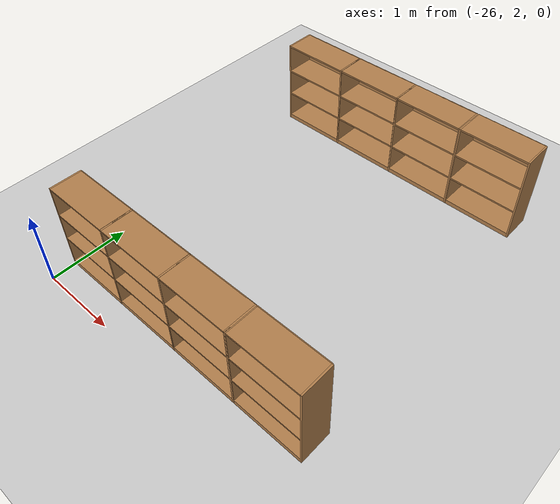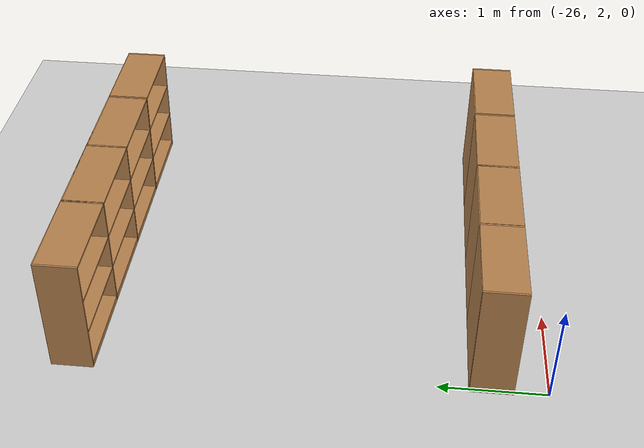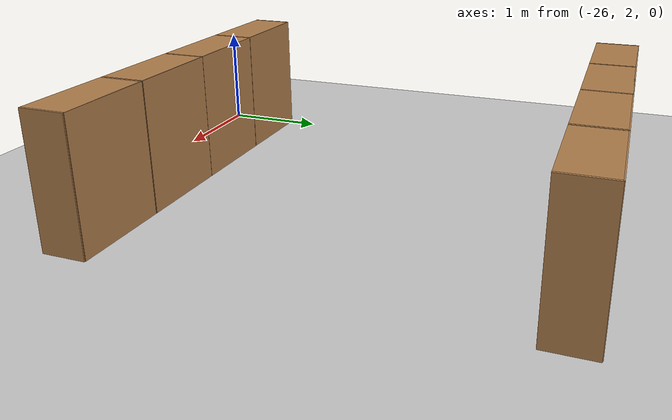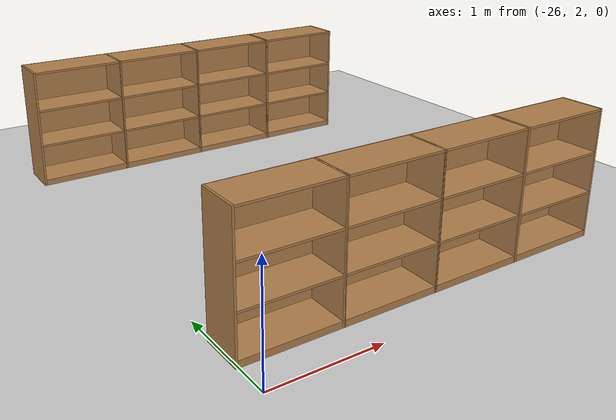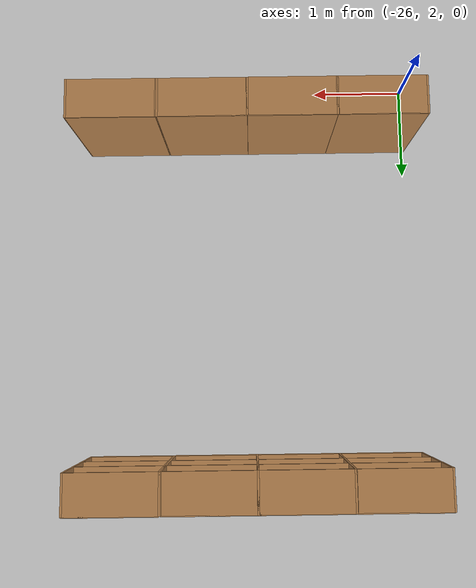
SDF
<sdf version="1.6">
 <world name="default">
  <model name="ground_plane">
   <static>1</static>
   <link name="link">
    <collision name="collision">
     <geometry><plane><normal>0 0 1</normal><size>100 100</size></plane></geometry>
     <surface><friction><ode><mu>100</mu><mu2>50</mu2></ode></friction></surface>
    </collision>
    <visual name="visual">
     <cast_shadows>0</cast_shadows>
     <geometry><plane><normal>0 0 1</normal><size>100 100</size></plane></geometry>
     <material>
      <script><uri>file://media/materials/scripts/gazebo.material</uri><name>Gazebo/Grey</name></script>
     </material>
    </visual>
   </link>
  </model>
  <model name="Bookself-4_clone_0_clone_4">
   <model name="Bookself-3">
    <model name="bookshelf_0">
     <static>1</static>
     <link name="link">
      <inertial><mass>1</mass></inertial>
      <collision name="back">
       <pose>0 0.005 0.6 0 -0 0</pose>
       <geometry><box><size>0.9 0.01 1.2</size></box></geometry>
      </collision>
      <visual name="visual1">
       <pose>0 0.005 0.6 0 -0 0</pose>
       <geometry><box><size>0.9 0.01 1.2</size></box></geometry>
       <material>
        <script><uri>file://media/materials/scripts/gazebo.material</uri><name>Gazebo/Wood</name></script>
       </material>
      </visual>
      <collision name="left_side">
       <pose>0.45 -0.195 0.6 0 -0 0</pose>
       <geometry><box><size>0.02 0.4 1.2</size></box></geometry>
      </collision>
      <visual name="visual2">
       <pose>0.45 -0.195 0.6 0 -0 0</pose>
       <geometry><box><size>0.02 0.4 1.2</size></box></geometry>
       <material>
        <script><uri>file://media/materials/scripts/gazebo.material</uri><name>Gazebo/Wood</name></script>
       </material>
      </visual>
      <collision name="right_side">
       <pose>-0.45 -0.195 0.6 0 -0 0</pose>
       <geometry><box><size>0.02 0.4 1.2</size></box></geometry>
      </collision>
      <visual name="visual3">
       <pose>-0.45 -0.195 0.6 0 -0 0</pose>
       <geometry><box><size>0.02 0.4 1.2</size></box></geometry>
       <material>
        <script><uri>file://media/materials/scripts/gazebo.material</uri><name>Gazebo/Wood</name></script>
       </material>
      </visual>
      <collision name="bottom">
       <pose>0 -0.195 0.03 0 -0 0</pose>
       <geometry><box><size>0.88 0.4 0.06</size></box></geometry>
      </collision>
      <visual name="visual4">
       <pose>0 -0.195 0.03 0 -0 0</pose>
       <geometry><box><size>0.88 0.4 0.06</size></box></geometry>
       <material>
        <script><uri>file://media/materials/scripts/gazebo.material</uri><name>Gazebo/Wood</name></script>
       </material>
      </visual>
      <collision name="top">
       <pose>0 -0.195 1.19 0 -0 0</pose>
       <geometry><box><size>0.88 0.4 0.02</size></box></geometry>
      </collision>
      <visual name="visual5">
       <pose>0 -0.195 1.19 0 -0 0</pose>
       <geometry><box><size>0.88 0.4 0.02</size></box></geometry>
       <material>
        <script><uri>file://media/materials/scripts/gazebo.material</uri><name>Gazebo/Wood</name></script>
       </material>
      </visual>
      <collision name="low_shelf">
       <pose>0 -0.195 0.43 0 -0 0</pose>
       <geometry><box><size>0.88 0.4 0.02</size></box></geometry>
      </collision>
      <visual name="visual6">
       <pose>0 -0.195 0.43 0 -0 0</pose>
       <geometry><box><size>0.88 0.4 0.02</size></box></geometry>
       <material>
        <script><uri>file://media/materials/scripts/gazebo.material</uri><name>Gazebo/Wood</name></script>
       </material>
      </visual>
      <collision name="high_shelf">
       <pose>0 -0.195 0.8 0 -0 0</pose>
       <geometry><box><size>0.88 0.4 0.02</size></box></geometry>
      </collision>
      <visual name="visual7">
       <pose>0 -0.195 0.8 0 -0 0</pose>
       <geometry><box><size>0.88 0.4 0.02</size></box></geometry>
       <material>
        <script><uri>file://media/materials/scripts/gazebo.material</uri><name>Gazebo/Wood</name></script>
       </material>
      </visual>
     </link>
     <pose>-0.903039 0 0 0 -0 0</pose>
    </model>
    <model name="bookshelf_1">
     <static>1</static>
     <link name="link">
      <inertial><mass>1</mass></inertial>
      <collision name="back">
       <pose>0 0.005 0.6 0 -0 0</pose>
       <geometry><box><size>0.9 0.01 1.2</size></box></geometry>
      </collision>
      <visual name="visual1">
       <pose>0 0.005 0.6 0 -0 0</pose>
       <geometry><box><size>0.9 0.01 1.2</size></box></geometry>
       <material>
        <script><uri>file://media/materials/scripts/gazebo.material</uri><name>Gazebo/Wood</name></script>
       </material>
      </visual>
      <collision name="left_side">
       <pose>0.45 -0.195 0.6 0 -0 0</pose>
       <geometry><box><size>0.02 0.4 1.2</size></box></geometry>
      </collision>
      <visual name="visual2">
       <pose>0.45 -0.195 0.6 0 -0 0</pose>
       <geometry><box><size>0.02 0.4 1.2</size></box></geometry>
       <material>
        <script><uri>file://media/materials/scripts/gazebo.material</uri><name>Gazebo/Wood</name></script>
       </material>
      </visual>
      <collision name="right_side">
       <pose>-0.45 -0.195 0.6 0 -0 0</pose>
       <geometry><box><size>0.02 0.4 1.2</size></box></geometry>
      </collision>
      <visual name="visual3">
       <pose>-0.45 -0.195 0.6 0 -0 0</pose>
       <geometry><box><size>0.02 0.4 1.2</size></box></geometry>
       <material>
        <script><uri>file://media/materials/scripts/gazebo.material</uri><name>Gazebo/Wood</name></script>
       </material>
      </visual>
      <collision name="bottom">
       <pose>0 -0.195 0.03 0 -0 0</pose>
       <geometry><box><size>0.88 0.4 0.06</size></box></geometry>
      </collision>
      <visual name="visual4">
       <pose>0 -0.195 0.03 0 -0 0</pose>
       <geometry><box><size>0.88 0.4 0.06</size></box></geometry>
       <material>
        <script><uri>file://media/materials/scripts/gazebo.material</uri><name>Gazebo/Wood</name></script>
       </material>
      </visual>
      <collision name="top">
       <pose>0 -0.195 1.19 0 -0 0</pose>
       <geometry><box><size>0.88 0.4 0.02</size></box></geometry>
      </collision>
      <visual name="visual5">
       <pose>0 -0.195 1.19 0 -0 0</pose>
       <geometry><box><size>0.88 0.4 0.02</size></box></geometry>
       <material>
        <script><uri>file://media/materials/scripts/gazebo.material</uri><name>Gazebo/Wood</name></script>
       </material>
      </visual>
      <collision name="low_shelf">
       <pose>0 -0.195 0.43 0 -0 0</pose>
       <geometry><box><size>0.88 0.4 0.02</size></box></geometry>
      </collision>
      <visual name="visual6">
       <pose>0 -0.195 0.43 0 -0 0</pose>
       <geometry><box><size>0.88 0.4 0.02</size></box></geometry>
       <material>
        <script><uri>file://media/materials/scripts/gazebo.material</uri><name>Gazebo/Wood</name></script>
       </material>
      </visual>
      <collision name="high_shelf">
       <pose>0 -0.195 0.8 0 -0 0</pose>
       <geometry><box><size>0.88 0.4 0.02</size></box></geometry>
      </collision>
      <visual name="visual7">
       <pose>0 -0.195 0.8 0 -0 0</pose>
       <geometry><box><size>0.88 0.4 0.02</size></box></geometry>
       <material>
        <script><uri>file://media/materials/scripts/gazebo.material</uri><name>Gazebo/Wood</name></script>
       </material>
      </visual>
     </link>
     <pose>0.000535 0 0 0 -0 0</pose>
    </model>
    <model name="bookshelf_1_clone">
     <static>1</static>
     <link name="link">
      <inertial><mass>1</mass></inertial>
      <collision name="back">
       <pose>0 0.005 0.6 0 -0 0</pose>
       <geometry><box><size>0.9 0.01 1.2</size></box></geometry>
      </collision>
      <visual name="visual1">
       <pose>0 0.005 0.6 0 -0 0</pose>
       <geometry><box><size>0.9 0.01 1.2</size></box></geometry>
       <material>
        <script><uri>file://media/materials/scripts/gazebo.material</uri><name>Gazebo/Wood</name></script>
       </material>
      </visual>
      <collision name="left_side">
       <pose>0.45 -0.195 0.6 0 -0 0</pose>
       <geometry><box><size>0.02 0.4 1.2</size></box></geometry>
      </collision>
      <visual name="visual2">
       <pose>0.45 -0.195 0.6 0 -0 0</pose>
       <geometry><box><size>0.02 0.4 1.2</size></box></geometry>
       <material>
        <script><uri>file://media/materials/scripts/gazebo.material</uri><name>Gazebo/Wood</name></script>
       </material>
      </visual>
      <collision name="right_side">
       <pose>-0.45 -0.195 0.6 0 -0 0</pose>
       <geometry><box><size>0.02 0.4 1.2</size></box></geometry>
      </collision>
      <visual name="visual3">
       <pose>-0.45 -0.195 0.6 0 -0 0</pose>
       <geometry><box><size>0.02 0.4 1.2</size></box></geometry>
       <material>
        <script><uri>file://media/materials/scripts/gazebo.material</uri><name>Gazebo/Wood</name></script>
       </material>
      </visual>
      <collision name="bottom">
       <pose>0 -0.195 0.03 0 -0 0</pose>
       <geometry><box><size>0.88 0.4 0.06</size></box></geometry>
      </collision>
      <visual name="visual4">
       <pose>0 -0.195 0.03 0 -0 0</pose>
       <geometry><box><size>0.88 0.4 0.06</size></box></geometry>
       <material>
        <script><uri>file://media/materials/scripts/gazebo.material</uri><name>Gazebo/Wood</name></script>
       </material>
      </visual>
      <collision name="top">
       <pose>0 -0.195 1.19 0 -0 0</pose>
       <geometry><box><size>0.88 0.4 0.02</size></box></geometry>
      </collision>
      <visual name="visual5">
       <pose>0 -0.195 1.19 0 -0 0</pose>
       <geometry><box><size>0.88 0.4 0.02</size></box></geometry>
       <material>
        <script><uri>file://media/materials/scripts/gazebo.material</uri><name>Gazebo/Wood</name></script>
       </material>
      </visual>
      <collision name="low_shelf">
       <pose>0 -0.195 0.43 0 -0 0</pose>
       <geometry><box><size>0.88 0.4 0.02</size></box></geometry>
      </collision>
      <visual name="visual6">
       <pose>0 -0.195 0.43 0 -0 0</pose>
       <geometry><box><size>0.88 0.4 0.02</size></box></geometry>
       <material>
        <script><uri>file://media/materials/scripts/gazebo.material</uri><name>Gazebo/Wood</name></script>
       </material>
      </visual>
      <collision name="high_shelf">
       <pose>0 -0.195 0.8 0 -0 0</pose>
       <geometry><box><size>0.88 0.4 0.02</size></box></geometry>
      </collision>
      <visual name="visual7">
       <pose>0 -0.195 0.8 0 -0 0</pose>
       <geometry><box><size>0.88 0.4 0.02</size></box></geometry>
       <material>
        <script><uri>file://media/materials/scripts/gazebo.material</uri><name>Gazebo/Wood</name></script>
       </material>
      </visual>
     </link>
     <pose>0.902502 0 0 0 -0 0</pose>
    </model>
    <static>1</static>
    <pose>-0.906894 3e-05 0 0 -0 0</pose>
   </model>
   <model name="bookshelf">
    <static>1</static>
    <link name="link">
     <inertial><mass>1</mass></inertial>
     <collision name="back">
      <pose>0 0.005 0.6 0 -0 0</pose>
      <geometry><box><size>0.9 0.01 1.2</size></box></geometry>
     </collision>
     <visual name="visual1">
      <pose>0 0.005 0.6 0 -0 0</pose>
      <geometry><box><size>0.9 0.01 1.2</size></box></geometry>
      <material>
       <script><uri>file://media/materials/scripts/gazebo.material</uri><name>Gazebo/Wood</name></script>
      </material>
     </visual>
     <collision name="left_side">
      <pose>0.45 -0.195 0.6 0 -0 0</pose>
      <geometry><box><size>0.02 0.4 1.2</size></box></geometry>
     </collision>
     <visual name="visual2">
      <pose>0.45 -0.195 0.6 0 -0 0</pose>
      <geometry><box><size>0.02 0.4 1.2</size></box></geometry>
      <material>
       <script><uri>file://media/materials/scripts/gazebo.material</uri><name>Gazebo/Wood</name></script>
      </material>
     </visual>
     <collision name="right_side">
      <pose>-0.45 -0.195 0.6 0 -0 0</pose>
      <geometry><box><size>0.02 0.4 1.2</size></box></geometry>
     </collision>
     <visual name="visual3">
      <pose>-0.45 -0.195 0.6 0 -0 0</pose>
      <geometry><box><size>0.02 0.4 1.2</size></box></geometry>
      <material>
       <script><uri>file://media/materials/scripts/gazebo.material</uri><name>Gazebo/Wood</name></script>
      </material>
     </visual>
     <collision name="bottom">
      <pose>0 -0.195 0.03 0 -0 0</pose>
      <geometry><box><size>0.88 0.4 0.06</size></box></geometry>
     </collision>
     <visual name="visual4">
      <pose>0 -0.195 0.03 0 -0 0</pose>
      <geometry><box><size>0.88 0.4 0.06</size></box></geometry>
      <material>
       <script><uri>file://media/materials/scripts/gazebo.material</uri><name>Gazebo/Wood</name></script>
      </material>
     </visual>
     <collision name="top">
      <pose>0 -0.195 1.19 0 -0 0</pose>
      <geometry><box><size>0.88 0.4 0.02</size></box></geometry>
     </collision>
     <visual name="visual5">
      <pose>0 -0.195 1.19 0 -0 0</pose>
      <geometry><box><size>0.88 0.4 0.02</size></box></geometry>
      <material>
       <script><uri>file://media/materials/scripts/gazebo.material</uri><name>Gazebo/Wood</name></script>
      </material>
     </visual>
     <collision name="low_shelf">
      <pose>0 -0.195 0.43 0 -0 0</pose>
      <geometry><box><size>0.88 0.4 0.02</size></box></geometry>
     </collision>
     <visual name="visual6">
      <pose>0 -0.195 0.43 0 -0 0</pose>
      <geometry><box><size>0.88 0.4 0.02</size></box></geometry>
      <material>
       <script><uri>file://media/materials/scripts/gazebo.material</uri><name>Gazebo/Wood</name></script>
      </material>
     </visual>
     <collision name="high_shelf">
      <pose>0 -0.195 0.8 0 -0 0</pose>
      <geometry><box><size>0.88 0.4 0.02</size></box></geometry>
     </collision>
     <visual name="visual7">
      <pose>0 -0.195 0.8 0 -0 0</pose>
      <geometry><box><size>0.88 0.4 0.02</size></box></geometry>
      <material>
       <script><uri>file://media/materials/scripts/gazebo.material</uri><name>Gazebo/Wood</name></script>
      </material>
     </visual>
    </link>
    <pose>0.906808 3e-05 0 0 -0 0</pose>
   </model>
   <static>0</static>
   <pose>-23.8129 6.52483 0 0 -0 0</pose>
  </model>
  <model name="Bookself-4_clone_0_clone_4_clone">
   <model name="Bookself-3">
    <model name="bookshelf_0">
     <static>1</static>
     <link name="link">
      <inertial><mass>1</mass></inertial>
      <collision name="back">
       <pose>0 0.005 0.6 0 -0 0</pose>
       <geometry><box><size>0.9 0.01 1.2</size></box></geometry>
      </collision>
      <visual name="visual1">
       <pose>0 0.005 0.6 0 -0 0</pose>
       <geometry><box><size>0.9 0.01 1.2</size></box></geometry>
       <material>
        <script><uri>file://media/materials/scripts/gazebo.material</uri><name>Gazebo/Wood</name></script>
       </material>
      </visual>
      <collision name="left_side">
       <pose>0.45 -0.195 0.6 0 -0 0</pose>
       <geometry><box><size>0.02 0.4 1.2</size></box></geometry>
      </collision>
      <visual name="visual2">
       <pose>0.45 -0.195 0.6 0 -0 0</pose>
       <geometry><box><size>0.02 0.4 1.2</size></box></geometry>
       <material>
        <script><uri>file://media/materials/scripts/gazebo.material</uri><name>Gazebo/Wood</name></script>
       </material>
      </visual>
      <collision name="right_side">
       <pose>-0.45 -0.195 0.6 0 -0 0</pose>
       <geometry><box><size>0.02 0.4 1.2</size></box></geometry>
      </collision>
      <visual name="visual3">
       <pose>-0.45 -0.195 0.6 0 -0 0</pose>
       <geometry><box><size>0.02 0.4 1.2</size></box></geometry>
       <material>
        <script><uri>file://media/materials/scripts/gazebo.material</uri><name>Gazebo/Wood</name></script>
       </material>
      </visual>
      <collision name="bottom">
       <pose>0 -0.195 0.03 0 -0 0</pose>
       <geometry><box><size>0.88 0.4 0.06</size></box></geometry>
      </collision>
      <visual name="visual4">
       <pose>0 -0.195 0.03 0 -0 0</pose>
       <geometry><box><size>0.88 0.4 0.06</size></box></geometry>
       <material>
        <script><uri>file://media/materials/scripts/gazebo.material</uri><name>Gazebo/Wood</name></script>
       </material>
      </visual>
      <collision name="top">
       <pose>0 -0.195 1.19 0 -0 0</pose>
       <geometry><box><size>0.88 0.4 0.02</size></box></geometry>
      </collision>
      <visual name="visual5">
       <pose>0 -0.195 1.19 0 -0 0</pose>
       <geometry><box><size>0.88 0.4 0.02</size></box></geometry>
       <material>
        <script><uri>file://media/materials/scripts/gazebo.material</uri><name>Gazebo/Wood</name></script>
       </material>
      </visual>
      <collision name="low_shelf">
       <pose>0 -0.195 0.43 0 -0 0</pose>
       <geometry><box><size>0.88 0.4 0.02</size></box></geometry>
      </collision>
      <visual name="visual6">
       <pose>0 -0.195 0.43 0 -0 0</pose>
       <geometry><box><size>0.88 0.4 0.02</size></box></geometry>
       <material>
        <script><uri>file://media/materials/scripts/gazebo.material</uri><name>Gazebo/Wood</name></script>
       </material>
      </visual>
      <collision name="high_shelf">
       <pose>0 -0.195 0.8 0 -0 0</pose>
       <geometry><box><size>0.88 0.4 0.02</size></box></geometry>
      </collision>
      <visual name="visual7">
       <pose>0 -0.195 0.8 0 -0 0</pose>
       <geometry><box><size>0.88 0.4 0.02</size></box></geometry>
       <material>
        <script><uri>file://media/materials/scripts/gazebo.material</uri><name>Gazebo/Wood</name></script>
       </material>
      </visual>
     </link>
     <pose>-0.903039 0 0 0 -0 0</pose>
    </model>
    <model name="bookshelf_1">
     <static>1</static>
     <link name="link">
      <inertial><mass>1</mass></inertial>
      <collision name="back">
       <pose>0 0.005 0.6 0 -0 0</pose>
       <geometry><box><size>0.9 0.01 1.2</size></box></geometry>
      </collision>
      <visual name="visual1">
       <pose>0 0.005 0.6 0 -0 0</pose>
       <geometry><box><size>0.9 0.01 1.2</size></box></geometry>
       <material>
        <script><uri>file://media/materials/scripts/gazebo.material</uri><name>Gazebo/Wood</name></script>
       </material>
      </visual>
      <collision name="left_side">
       <pose>0.45 -0.195 0.6 0 -0 0</pose>
       <geometry><box><size>0.02 0.4 1.2</size></box></geometry>
      </collision>
      <visual name="visual2">
       <pose>0.45 -0.195 0.6 0 -0 0</pose>
       <geometry><box><size>0.02 0.4 1.2</size></box></geometry>
       <material>
        <script><uri>file://media/materials/scripts/gazebo.material</uri><name>Gazebo/Wood</name></script>
       </material>
      </visual>
      <collision name="right_side">
       <pose>-0.45 -0.195 0.6 0 -0 0</pose>
       <geometry><box><size>0.02 0.4 1.2</size></box></geometry>
      </collision>
      <visual name="visual3">
       <pose>-0.45 -0.195 0.6 0 -0 0</pose>
       <geometry><box><size>0.02 0.4 1.2</size></box></geometry>
       <material>
        <script><uri>file://media/materials/scripts/gazebo.material</uri><name>Gazebo/Wood</name></script>
       </material>
      </visual>
      <collision name="bottom">
       <pose>0 -0.195 0.03 0 -0 0</pose>
       <geometry><box><size>0.88 0.4 0.06</size></box></geometry>
      </collision>
      <visual name="visual4">
       <pose>0 -0.195 0.03 0 -0 0</pose>
       <geometry><box><size>0.88 0.4 0.06</size></box></geometry>
       <material>
        <script><uri>file://media/materials/scripts/gazebo.material</uri><name>Gazebo/Wood</name></script>
       </material>
      </visual>
      <collision name="top">
       <pose>0 -0.195 1.19 0 -0 0</pose>
       <geometry><box><size>0.88 0.4 0.02</size></box></geometry>
      </collision>
      <visual name="visual5">
       <pose>0 -0.195 1.19 0 -0 0</pose>
       <geometry><box><size>0.88 0.4 0.02</size></box></geometry>
       <material>
        <script><uri>file://media/materials/scripts/gazebo.material</uri><name>Gazebo/Wood</name></script>
       </material>
      </visual>
      <collision name="low_shelf">
       <pose>0 -0.195 0.43 0 -0 0</pose>
       <geometry><box><size>0.88 0.4 0.02</size></box></geometry>
      </collision>
      <visual name="visual6">
       <pose>0 -0.195 0.43 0 -0 0</pose>
       <geometry><box><size>0.88 0.4 0.02</size></box></geometry>
       <material>
        <script><uri>file://media/materials/scripts/gazebo.material</uri><name>Gazebo/Wood</name></script>
       </material>
      </visual>
      <collision name="high_shelf">
       <pose>0 -0.195 0.8 0 -0 0</pose>
       <geometry><box><size>0.88 0.4 0.02</size></box></geometry>
      </collision>
      <visual name="visual7">
       <pose>0 -0.195 0.8 0 -0 0</pose>
       <geometry><box><size>0.88 0.4 0.02</size></box></geometry>
       <material>
        <script><uri>file://media/materials/scripts/gazebo.material</uri><name>Gazebo/Wood</name></script>
       </material>
      </visual>
     </link>
     <pose>0.000535 0 0 0 -0 0</pose>
    </model>
    <model name="bookshelf_1_clone">
     <static>1</static>
     <link name="link">
      <inertial><mass>1</mass></inertial>
      <collision name="back">
       <pose>0 0.005 0.6 0 -0 0</pose>
       <geometry><box><size>0.9 0.01 1.2</size></box></geometry>
      </collision>
      <visual name="visual1">
       <pose>0 0.005 0.6 0 -0 0</pose>
       <geometry><box><size>0.9 0.01 1.2</size></box></geometry>
       <material>
        <script><uri>file://media/materials/scripts/gazebo.material</uri><name>Gazebo/Wood</name></script>
       </material>
      </visual>
      <collision name="left_side">
       <pose>0.45 -0.195 0.6 0 -0 0</pose>
       <geometry><box><size>0.02 0.4 1.2</size></box></geometry>
      </collision>
      <visual name="visual2">
       <pose>0.45 -0.195 0.6 0 -0 0</pose>
       <geometry><box><size>0.02 0.4 1.2</size></box></geometry>
       <material>
        <script><uri>file://media/materials/scripts/gazebo.material</uri><name>Gazebo/Wood</name></script>
       </material>
      </visual>
      <collision name="right_side">
       <pose>-0.45 -0.195 0.6 0 -0 0</pose>
       <geometry><box><size>0.02 0.4 1.2</size></box></geometry>
      </collision>
      <visual name="visual3">
       <pose>-0.45 -0.195 0.6 0 -0 0</pose>
       <geometry><box><size>0.02 0.4 1.2</size></box></geometry>
       <material>
        <script><uri>file://media/materials/scripts/gazebo.material</uri><name>Gazebo/Wood</name></script>
       </material>
      </visual>
      <collision name="bottom">
       <pose>0 -0.195 0.03 0 -0 0</pose>
       <geometry><box><size>0.88 0.4 0.06</size></box></geometry>
      </collision>
      <visual name="visual4">
       <pose>0 -0.195 0.03 0 -0 0</pose>
       <geometry><box><size>0.88 0.4 0.06</size></box></geometry>
       <material>
        <script><uri>file://media/materials/scripts/gazebo.material</uri><name>Gazebo/Wood</name></script>
       </material>
      </visual>
      <collision name="top">
       <pose>0 -0.195 1.19 0 -0 0</pose>
       <geometry><box><size>0.88 0.4 0.02</size></box></geometry>
      </collision>
      <visual name="visual5">
       <pose>0 -0.195 1.19 0 -0 0</pose>
       <geometry><box><size>0.88 0.4 0.02</size></box></geometry>
       <material>
        <script><uri>file://media/materials/scripts/gazebo.material</uri><name>Gazebo/Wood</name></script>
       </material>
      </visual>
      <collision name="low_shelf">
       <pose>0 -0.195 0.43 0 -0 0</pose>
       <geometry><box><size>0.88 0.4 0.02</size></box></geometry>
      </collision>
      <visual name="visual6">
       <pose>0 -0.195 0.43 0 -0 0</pose>
       <geometry><box><size>0.88 0.4 0.02</size></box></geometry>
       <material>
        <script><uri>file://media/materials/scripts/gazebo.material</uri><name>Gazebo/Wood</name></script>
       </material>
      </visual>
      <collision name="high_shelf">
       <pose>0 -0.195 0.8 0 -0 0</pose>
       <geometry><box><size>0.88 0.4 0.02</size></box></geometry>
      </collision>
      <visual name="visual7">
       <pose>0 -0.195 0.8 0 -0 0</pose>
       <geometry><box><size>0.88 0.4 0.02</size></box></geometry>
       <material>
        <script><uri>file://media/materials/scripts/gazebo.material</uri><name>Gazebo/Wood</name></script>
       </material>
      </visual>
     </link>
     <pose>0.902502 0 0 0 -0 0</pose>
    </model>
    <static>1</static>
    <pose>-0.906894 3e-05 0 0 -0 0</pose>
   </model>
   <model name="bookshelf">
    <static>1</static>
    <link name="link">
     <inertial><mass>1</mass></inertial>
     <collision name="back">
      <pose>0 0.005 0.6 0 -0 0</pose>
      <geometry><box><size>0.9 0.01 1.2</size></box></geometry>
     </collision>
     <visual name="visual1">
      <pose>0 0.005 0.6 0 -0 0</pose>
      <geometry><box><size>0.9 0.01 1.2</size></box></geometry>
      <material>
       <script><uri>file://media/materials/scripts/gazebo.material</uri><name>Gazebo/Wood</name></script>
      </material>
     </visual>
     <collision name="left_side">
      <pose>0.45 -0.195 0.6 0 -0 0</pose>
      <geometry><box><size>0.02 0.4 1.2</size></box></geometry>
     </collision>
     <visual name="visual2">
      <pose>0.45 -0.195 0.6 0 -0 0</pose>
      <geometry><box><size>0.02 0.4 1.2</size></box></geometry>
      <material>
       <script><uri>file://media/materials/scripts/gazebo.material</uri><name>Gazebo/Wood</name></script>
      </material>
     </visual>
     <collision name="right_side">
      <pose>-0.45 -0.195 0.6 0 -0 0</pose>
      <geometry><box><size>0.02 0.4 1.2</size></box></geometry>
     </collision>
     <visual name="visual3">
      <pose>-0.45 -0.195 0.6 0 -0 0</pose>
      <geometry><box><size>0.02 0.4 1.2</size></box></geometry>
      <material>
       <script><uri>file://media/materials/scripts/gazebo.material</uri><name>Gazebo/Wood</name></script>
      </material>
     </visual>
     <collision name="bottom">
      <pose>0 -0.195 0.03 0 -0 0</pose>
      <geometry><box><size>0.88 0.4 0.06</size></box></geometry>
     </collision>
     <visual name="visual4">
      <pose>0 -0.195 0.03 0 -0 0</pose>
      <geometry><box><size>0.88 0.4 0.06</size></box></geometry>
      <material>
       <script><uri>file://media/materials/scripts/gazebo.material</uri><name>Gazebo/Wood</name></script>
      </material>
     </visual>
     <collision name="top">
      <pose>0 -0.195 1.19 0 -0 0</pose>
      <geometry><box><size>0.88 0.4 0.02</size></box></geometry>
     </collision>
     <visual name="visual5">
      <pose>0 -0.195 1.19 0 -0 0</pose>
      <geometry><box><size>0.88 0.4 0.02</size></box></geometry>
      <material>
       <script><uri>file://media/materials/scripts/gazebo.material</uri><name>Gazebo/Wood</name></script>
      </material>
     </visual>
     <collision name="low_shelf">
      <pose>0 -0.195 0.43 0 -0 0</pose>
      <geometry><box><size>0.88 0.4 0.02</size></box></geometry>
     </collision>
     <visual name="visual6">
      <pose>0 -0.195 0.43 0 -0 0</pose>
      <geometry><box><size>0.88 0.4 0.02</size></box></geometry>
      <material>
       <script><uri>file://media/materials/scripts/gazebo.material</uri><name>Gazebo/Wood</name></script>
      </material>
     </visual>
     <collision name="high_shelf">
      <pose>0 -0.195 0.8 0 -0 0</pose>
      <geometry><box><size>0.88 0.4 0.02</size></box></geometry>
     </collision>
     <visual name="visual7">
      <pose>0 -0.195 0.8 0 -0 0</pose>
      <geometry><box><size>0.88 0.4 0.02</size></box></geometry>
      <material>
       <script><uri>file://media/materials/scripts/gazebo.material</uri><name>Gazebo/Wood</name></script>
      </material>
     </visual>
    </link>
    <pose>0.906808 3e-05 0 0 -0 0</pose>
   </model>
   <static>0</static>
   <pose>-23.7562 2.70659 0 0 -0 0</pose>
  </model>
 </world>
</sdf>
